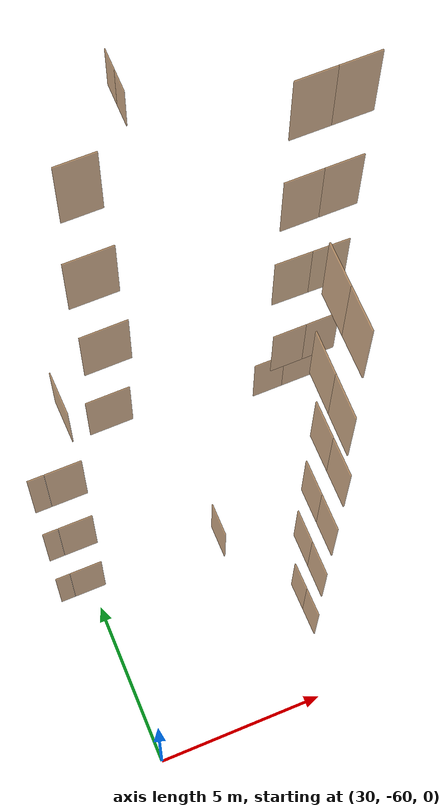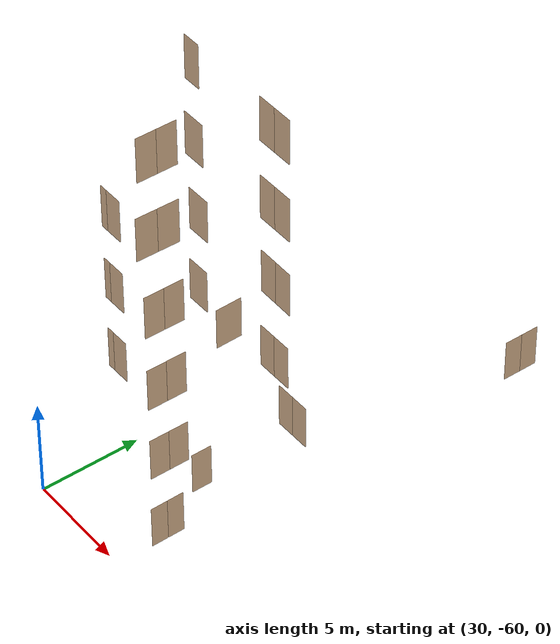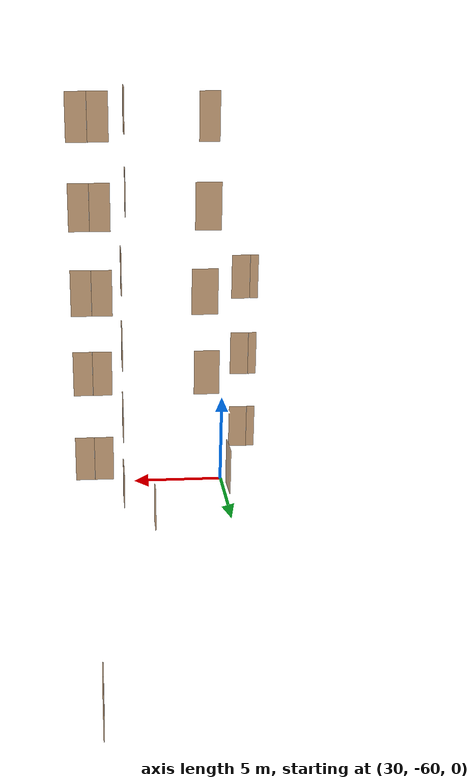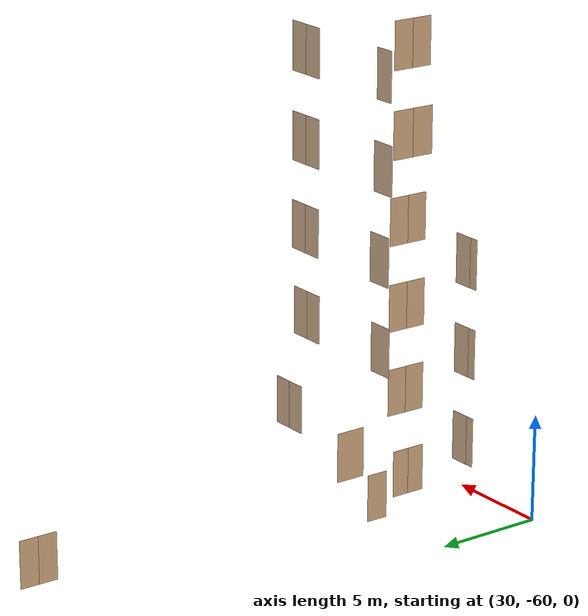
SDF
<sdf version="1.7">
 <world name="sim_world">
  <model name="Snull6">
   <pose>36.91817570847177 -38.673374901990044 0.0 0 0 -1.574078184232942</pose>
   <link name="right">
    <pose>0.45222959440596977 0 1.11 0 0 0</pose>
    <visual name="right_visual">
     <geometry><box><size>0.8944591888119395 0.03 2.2</size></box></geometry>
     <material>
      <ambient>0.5 0.25 0 0.6</ambient>
      <diffuse>0.5 0.25 0 0.6</diffuse>
      <pbr><metal><metalness>0.0</metalness></metal></pbr>
     </material>
    </visual>
    <collision name="right_collision">
     <geometry><box><size>0.8944591888119395 0.03 2.2</size></box></geometry>
     <surface><contact><collide_bitmask>0x02</collide_bitmask></contact></surface>
    </collision>
    <inertial>
     <mass>50.0</mass>
     <inertia><ixx>20.17041666666667</ixx><iyy>23.500238501875476</iyy><izz>3.3373218352088037</izz></inertia>
    </inertial>
   </link>
   <joint name="right_joint" type="revolute">
    <parent>world</parent>
    <child>right</child>
    <axis><xyz>0 0 -1</xyz><limit><lower>0</lower><upper>1.57</upper></limit></axis>
    <pose>0.45222959440596977 0 0 0 0 0</pose>
   </joint>
   <link name="left">
    <pose>-0.45222959440596977 0 1.11 0 0 0</pose>
    <visual name="left_visual">
     <geometry><box><size>0.8944591888119395 0.03 2.2</size></box></geometry>
     <material>
      <ambient>0.5 0.25 0 0.6</ambient>
      <diffuse>0.5 0.25 0 0.6</diffuse>
      <pbr><metal><metalness>0.0</metalness></metal></pbr>
     </material>
    </visual>
    <collision name="left_collision">
     <geometry><box><size>0.8944591888119395 0.03 2.2</size></box></geometry>
     <surface><contact><collide_bitmask>0x02</collide_bitmask></contact></surface>
    </collision>
    <inertial>
     <mass>50.0</mass>
     <inertia><ixx>20.17041666666667</ixx><iyy>23.500238501875476</iyy><izz>3.3373218352088037</izz></inertia>
    </inertial>
   </link>
   <joint name="left_joint" type="revolute">
    <parent>world</parent>
    <child>left</child>
    <axis><xyz>0 0 -1</xyz><limit><lower>-1.57</lower><upper>0</upper></limit></axis>
    <pose>-0.45222959440596977 0 0 0 0 0</pose>
   </joint>
   <plugin name="register_component" filename="libregister_component.so">
    <component name="Door">
     <v_max_door>0.5</v_max_door>
     <a_max_door>0.3</a_max_door>
     <a_nom_door>0.15</a_nom_door>
     <dx_min_door>0.01</dx_min_door>
     <f_max_door>500.0</f_max_door>
     <ros_interface>true</ros_interface>
     <door name="Snull6" type="DoubleSwingDoor" left_joint_name="left_joint" right_joint_name="right_joint"/>
    </component>
   </plugin>
  </model>
  <model name="Snull7">
   <pose>34.106597468543455 -54.42554978904526 0.0 0 0 -1.5707963267948966</pose>
   <link name="right">
    <pose>0 0 1.11 0 0 0</pose>
    <visual name="right_visual">
     <geometry><box><size>1.0218858977709695 0.03 2.2</size></box></geometry>
     <material>
      <ambient>0.5 0.25 0 0.6</ambient>
      <diffuse>0.5 0.25 0 0.6</diffuse>
      <pbr><metal><metalness>0.0</metalness></metal></pbr>
     </material>
    </visual>
    <collision name="right_collision">
     <geometry><box><size>1.0218858977709695 0.03 2.2</size></box></geometry>
     <surface><contact><collide_bitmask>0x02</collide_bitmask></contact></surface>
    </collision>
    <inertial>
     <mass>50.0</mass>
     <inertia><ixx>20.17041666666667</ixx><iyy>24.517711616929923</iyy><izz>4.354794950263251</izz></inertia>
    </inertial>
   </link>
   <joint name="right_joint" type="revolute">
    <parent>world</parent>
    <child>right</child>
    <axis><xyz>0 0 -1</xyz><limit><lower>0</lower><upper>1.57</upper></limit></axis>
    <pose>0.5159429488854848 0 0 0 0 0</pose>
   </joint>
   <plugin name="register_component" filename="libregister_component.so">
    <component name="Door">
     <v_max_door>0.5</v_max_door>
     <a_max_door>0.3</a_max_door>
     <a_nom_door>0.15</a_nom_door>
     <dx_min_door>0.01</dx_min_door>
     <f_max_door>500.0</f_max_door>
     <ros_interface>true</ros_interface>
     <door name="Snull7" type="SwingDoor" left_joint_name="empty_joint" right_joint_name="right_joint"/>
    </component>
   </plugin>
  </model>
  <model name="Snull9">
   <pose>35.663947279991014 -57.37185901504682 0.0 0 0 -1.5624884779698478</pose>
   <link name="right">
    <pose>0.42133590085702205 0 1.11 0 0 0</pose>
    <visual name="right_visual">
     <geometry><box><size>0.8326718017140441 0.03 2.2</size></box></geometry>
     <material>
      <ambient>0.5 0.25 0 0.6</ambient>
      <diffuse>0.5 0.25 0 0.6</diffuse>
      <pbr><metal><metalness>0.0</metalness></metal></pbr>
     </material>
    </visual>
    <collision name="right_collision">
     <geometry><box><size>0.8326718017140441 0.03 2.2</size></box></geometry>
     <surface><contact><collide_bitmask>0x02</collide_bitmask></contact></surface>
    </collision>
    <inertial>
     <mass>50.0</mass>
     <inertia><ixx>20.17041666666667</ixx><iyy>23.055593039040474</iyy><izz>2.892676372373802</izz></inertia>
    </inertial>
   </link>
   <joint name="right_joint" type="revolute">
    <parent>world</parent>
    <child>right</child>
    <axis><xyz>0 0 -1</xyz><limit><lower>0</lower><upper>1.57</upper></limit></axis>
    <pose>0.42133590085702205 0 0 0 0 0</pose>
   </joint>
   <link name="left">
    <pose>-0.42133590085702205 0 1.11 0 0 0</pose>
    <visual name="left_visual">
     <geometry><box><size>0.8326718017140441 0.03 2.2</size></box></geometry>
     <material>
      <ambient>0.5 0.25 0 0.6</ambient>
      <diffuse>0.5 0.25 0 0.6</diffuse>
      <pbr><metal><metalness>0.0</metalness></metal></pbr>
     </material>
    </visual>
    <collision name="left_collision">
     <geometry><box><size>0.8326718017140441 0.03 2.2</size></box></geometry>
     <surface><contact><collide_bitmask>0x02</collide_bitmask></contact></surface>
    </collision>
    <inertial>
     <mass>50.0</mass>
     <inertia><ixx>20.17041666666667</ixx><iyy>23.055593039040474</iyy><izz>2.892676372373802</izz></inertia>
    </inertial>
   </link>
   <joint name="left_joint" type="revolute">
    <parent>world</parent>
    <child>left</child>
    <axis><xyz>0 0 -1</xyz><limit><lower>-1.57</lower><upper>0</upper></limit></axis>
    <pose>-0.42133590085702205 0 0 0 0 0</pose>
   </joint>
   <plugin name="register_component" filename="libregister_component.so">
    <component name="Door">
     <v_max_door>0.5</v_max_door>
     <a_max_door>0.3</a_max_door>
     <a_nom_door>0.15</a_nom_door>
     <dx_min_door>0.01</dx_min_door>
     <f_max_door>500.0</f_max_door>
     <ros_interface>true</ros_interface>
     <door name="Snull9" type="DoubleSwingDoor" left_joint_name="left_joint" right_joint_name="right_joint"/>
    </component>
   </plugin>
  </model>
  <model name="0null9">
   <pose>35.66852107680243 -57.16532875331363 4.0 0 0 -1.5745061043989732</pose>
   <link name="right">
    <pose>0.488130155778294 0 1.11 0 0 0</pose>
    <visual name="right_visual">
     <geometry><box><size>0.966260311556588 0.03 2.2</size></box></geometry>
     <material>
      <ambient>0.5 0.25 0 0.6</ambient>
      <diffuse>0.5 0.25 0 0.6</diffuse>
      <pbr><metal><metalness>0.0</metalness></metal></pbr>
     </material>
    </visual>
    <collision name="right_collision">
     <geometry><box><size>0.966260311556588 0.03 2.2</size></box></geometry>
     <surface><contact><collide_bitmask>0x02</collide_bitmask></contact></surface>
    </collision>
    <inertial>
     <mass>50.0</mass>
     <inertia><ixx>20.17041666666667</ixx><iyy>24.056912457039317</iyy><izz>3.893995790372644</izz></inertia>
    </inertial>
   </link>
   <joint name="right_joint" type="revolute">
    <parent>world</parent>
    <child>right</child>
    <axis><xyz>0 0 1</xyz><limit><lower>0</lower><upper>1.57</upper></limit></axis>
    <pose>0.488130155778294 0 0 0 0 0</pose>
   </joint>
   <link name="left">
    <pose>-0.488130155778294 0 1.11 0 0 0</pose>
    <visual name="left_visual">
     <geometry><box><size>0.966260311556588 0.03 2.2</size></box></geometry>
     <material>
      <ambient>0.5 0.25 0 0.6</ambient>
      <diffuse>0.5 0.25 0 0.6</diffuse>
      <pbr><metal><metalness>0.0</metalness></metal></pbr>
     </material>
    </visual>
    <collision name="left_collision">
     <geometry><box><size>0.966260311556588 0.03 2.2</size></box></geometry>
     <surface><contact><collide_bitmask>0x02</collide_bitmask></contact></surface>
    </collision>
    <inertial>
     <mass>50.0</mass>
     <inertia><ixx>20.17041666666667</ixx><iyy>24.056912457039317</iyy><izz>3.893995790372644</izz></inertia>
    </inertial>
   </link>
   <joint name="left_joint" type="revolute">
    <parent>world</parent>
    <child>left</child>
    <axis><xyz>0 0 1</xyz><limit><lower>-1.57</lower><upper>0</upper></limit></axis>
    <pose>-0.488130155778294 0 0 0 0 0</pose>
   </joint>
   <plugin name="register_component" filename="libregister_component.so">
    <component name="Door">
     <v_max_door>0.5</v_max_door>
     <a_max_door>0.3</a_max_door>
     <a_nom_door>0.15</a_nom_door>
     <dx_min_door>0.01</dx_min_door>
     <f_max_door>500.0</f_max_door>
     <ros_interface>true</ros_interface>
     <door name="0null9" type="DoubleSwingDoor" left_joint_name="left_joint" right_joint_name="right_joint"/>
    </component>
   </plugin>
  </model>
  <model name="0null42">
   <pose>30.847141843706808 -50.4685248105141 4.0 0 0 1.5911566741003251</pose>
   <link name="right">
    <pose>0 0 1.11 0 0 0</pose>
    <visual name="right_visual">
     <geometry><box><size>1.3617886358121807 0.03 2.2</size></box></geometry>
     <material>
      <ambient>0.5 0.25 0 0.6</ambient>
      <diffuse>0.5 0.25 0 0.6</diffuse>
      <pbr><metal><metalness>0.0</metalness></metal></pbr>
     </material>
    </visual>
    <collision name="right_collision">
     <geometry><box><size>1.3617886358121807 0.03 2.2</size></box></geometry>
     <surface><contact><collide_bitmask>0x02</collide_bitmask></contact></surface>
    </collision>
    <inertial>
     <mass>50.0</mass>
     <inertia><ixx>20.17041666666667</ixx><iyy>27.893617869280007</iyy><izz>7.730701202613334</izz></inertia>
    </inertial>
   </link>
   <joint name="right_joint" type="revolute">
    <parent>world</parent>
    <child>right</child>
    <axis><xyz>0 0 1</xyz><limit><lower>0</lower><upper>1.57</upper></limit></axis>
    <pose>0.6858943179060903 0 0 0 0 0</pose>
   </joint>
   <plugin name="register_component" filename="libregister_component.so">
    <component name="Door">
     <v_max_door>0.5</v_max_door>
     <a_max_door>0.3</a_max_door>
     <a_nom_door>0.15</a_nom_door>
     <dx_min_door>0.01</dx_min_door>
     <f_max_door>500.0</f_max_door>
     <ros_interface>true</ros_interface>
     <door name="0null42" type="SwingDoor" left_joint_name="empty_joint" right_joint_name="right_joint"/>
    </component>
   </plugin>
  </model>
  <model name="0null43">
   <pose>29.536833065750642 -55.49008699548217 4.0 0 0 0.0</pose>
   <link name="right">
    <pose>0.20702264496135603 0 1.11 0 0 0</pose>
    <visual name="right_visual">
     <geometry><box><size>0.9008996378299665 0.03 2.2</size></box></geometry>
     <material>
      <ambient>0.5 0.25 0 0.6</ambient>
      <diffuse>0.5 0.25 0 0.6</diffuse>
      <pbr><metal><metalness>0.0</metalness></metal></pbr>
     </material>
    </visual>
    <collision name="right_collision">
     <geometry><box><size>0.9008996378299665 0.03 2.2</size></box></geometry>
     <surface><contact><collide_bitmask>0x02</collide_bitmask></contact></surface>
    </collision>
    <inertial>
     <mass>50.0</mass>
     <inertia><ixx>20.17041666666667</ixx><iyy>23.54841732267569</iyy><izz>3.3855006560090204</izz></inertia>
    </inertial>
   </link>
   <joint name="right_joint" type="revolute">
    <parent>world</parent>
    <child>right</child>
    <axis><xyz>0 0 -1</xyz><limit><lower>0</lower><upper>1.57</upper></limit></axis>
    <pose>0.45544981891498326 0 0 0 0 0</pose>
   </joint>
   <link name="left">
    <pose>-0.45544981891498326 0 1.11 0 0 0</pose>
    <visual name="left_visual">
     <geometry><box><size>0.40404528992271205 0.03 2.2</size></box></geometry>
     <material>
      <ambient>0.5 0.25 0 0.6</ambient>
      <diffuse>0.5 0.25 0 0.6</diffuse>
      <pbr><metal><metalness>0.0</metalness></metal></pbr>
     </material>
    </visual>
    <collision name="left_collision">
     <geometry><box><size>0.40404528992271205 0.03 2.2</size></box></geometry>
     <surface><contact><collide_bitmask>0x02</collide_bitmask></contact></surface>
    </collision>
    <inertial>
     <mass>50.0</mass>
     <inertia><ixx>20.17041666666667</ixx><iyy>20.84688581795304</iyy><izz>0.6839691512863686</izz></inertia>
    </inertial>
   </link>
   <joint name="left_joint" type="revolute">
    <parent>world</parent>
    <child>left</child>
    <axis><xyz>0 0 -1</xyz><limit><lower>-1.57</lower><upper>0</upper></limit></axis>
    <pose>-0.20702264496135603 0 0 0 0 0</pose>
   </joint>
   <plugin name="register_component" filename="libregister_component.so">
    <component name="Door">
     <v_max_door>0.5</v_max_door>
     <a_max_door>0.3</a_max_door>
     <a_nom_door>0.15</a_nom_door>
     <dx_min_door>0.01</dx_min_door>
     <f_max_door>500.0</f_max_door>
     <ros_interface>true</ros_interface>
     <door name="0null43" type="DoubleSwingDoor" left_joint_name="left_joint" right_joint_name="right_joint"/>
    </component>
   </plugin>
  </model>
  <model name="0null176">
   <pose>37.17137736623975 -51.82124855318669 4.0 0 0 -3.140550604193771</pose>
   <link name="right">
    <pose>0.4568385409799299 0 1.11 0 0 0</pose>
    <visual name="right_visual">
     <geometry><box><size>0.9036770819598597 0.03 2.2</size></box></geometry>
     <material>
      <ambient>0.5 0.25 0 0.6</ambient>
      <diffuse>0.5 0.25 0 0.6</diffuse>
      <pbr><metal><metalness>0.0</metalness></metal></pbr>
     </material>
    </visual>
    <collision name="right_collision">
     <geometry><box><size>0.9036770819598597 0.03 2.2</size></box></geometry>
     <surface><contact><collide_bitmask>0x02</collide_bitmask></contact></surface>
    </collision>
    <inertial>
     <mass>50.0</mass>
     <inertia><ixx>20.17041666666667</ixx><iyy>23.5693011185812</iyy><izz>3.40638445191453</izz></inertia>
    </inertial>
   </link>
   <joint name="right_joint" type="revolute">
    <parent>world</parent>
    <child>right</child>
    <axis><xyz>0 0 -1</xyz><limit><lower>0</lower><upper>1.57</upper></limit></axis>
    <pose>0.4568385409799299 0 0 0 0 0</pose>
   </joint>
   <link name="left">
    <pose>-0.4568385409799299 0 1.11 0 0 0</pose>
    <visual name="left_visual">
     <geometry><box><size>0.9036770819598597 0.03 2.2</size></box></geometry>
     <material>
      <ambient>0.5 0.25 0 0.6</ambient>
      <diffuse>0.5 0.25 0 0.6</diffuse>
      <pbr><metal><metalness>0.0</metalness></metal></pbr>
     </material>
    </visual>
    <collision name="left_collision">
     <geometry><box><size>0.9036770819598597 0.03 2.2</size></box></geometry>
     <surface><contact><collide_bitmask>0x02</collide_bitmask></contact></surface>
    </collision>
    <inertial>
     <mass>50.0</mass>
     <inertia><ixx>20.17041666666667</ixx><iyy>23.5693011185812</iyy><izz>3.40638445191453</izz></inertia>
    </inertial>
   </link>
   <joint name="left_joint" type="revolute">
    <parent>world</parent>
    <child>left</child>
    <axis><xyz>0 0 -1</xyz><limit><lower>-1.57</lower><upper>0</upper></limit></axis>
    <pose>-0.4568385409799299 0 0 0 0 0</pose>
   </joint>
   <plugin name="register_component" filename="libregister_component.so">
    <component name="Door">
     <v_max_door>0.5</v_max_door>
     <a_max_door>0.3</a_max_door>
     <a_nom_door>0.15</a_nom_door>
     <dx_min_door>0.01</dx_min_door>
     <f_max_door>500.0</f_max_door>
     <ros_interface>true</ros_interface>
     <door name="0null176" type="DoubleSwingDoor" left_joint_name="left_joint" right_joint_name="right_joint"/>
    </component>
   </plugin>
  </model>
  <model name="1null9">
   <pose>35.66852107680243 -57.16532875331363 8.0 0 0 -1.5745061043989732</pose>
   <link name="right">
    <pose>0.488130155778294 0 1.11 0 0 0</pose>
    <visual name="right_visual">
     <geometry><box><size>0.966260311556588 0.03 2.2</size></box></geometry>
     <material>
      <ambient>0.5 0.25 0 0.6</ambient>
      <diffuse>0.5 0.25 0 0.6</diffuse>
      <pbr><metal><metalness>0.0</metalness></metal></pbr>
     </material>
    </visual>
    <collision name="right_collision">
     <geometry><box><size>0.966260311556588 0.03 2.2</size></box></geometry>
     <surface><contact><collide_bitmask>0x02</collide_bitmask></contact></surface>
    </collision>
    <inertial>
     <mass>50.0</mass>
     <inertia><ixx>20.17041666666667</ixx><iyy>24.056912457039317</iyy><izz>3.893995790372644</izz></inertia>
    </inertial>
   </link>
   <joint name="right_joint" type="revolute">
    <parent>world</parent>
    <child>right</child>
    <axis><xyz>0 0 -1</xyz><limit><lower>0</lower><upper>1.57</upper></limit></axis>
    <pose>0.488130155778294 0 0 0 0 0</pose>
   </joint>
   <link name="left">
    <pose>-0.488130155778294 0 1.11 0 0 0</pose>
    <visual name="left_visual">
     <geometry><box><size>0.966260311556588 0.03 2.2</size></box></geometry>
     <material>
      <ambient>0.5 0.25 0 0.6</ambient>
      <diffuse>0.5 0.25 0 0.6</diffuse>
      <pbr><metal><metalness>0.0</metalness></metal></pbr>
     </material>
    </visual>
    <collision name="left_collision">
     <geometry><box><size>0.966260311556588 0.03 2.2</size></box></geometry>
     <surface><contact><collide_bitmask>0x02</collide_bitmask></contact></surface>
    </collision>
    <inertial>
     <mass>50.0</mass>
     <inertia><ixx>20.17041666666667</ixx><iyy>24.056912457039317</iyy><izz>3.893995790372644</izz></inertia>
    </inertial>
   </link>
   <joint name="left_joint" type="revolute">
    <parent>world</parent>
    <child>left</child>
    <axis><xyz>0 0 -1</xyz><limit><lower>-1.57</lower><upper>0</upper></limit></axis>
    <pose>-0.488130155778294 0 0 0 0 0</pose>
   </joint>
   <plugin name="register_component" filename="libregister_component.so">
    <component name="Door">
     <v_max_door>0.5</v_max_door>
     <a_max_door>0.3</a_max_door>
     <a_nom_door>0.15</a_nom_door>
     <dx_min_door>0.01</dx_min_door>
     <f_max_door>500.0</f_max_door>
     <ros_interface>true</ros_interface>
     <door name="1null9" type="DoubleSwingDoor" left_joint_name="left_joint" right_joint_name="right_joint"/>
    </component>
   </plugin>
  </model>
  <model name="1null43">
   <pose>29.536833065750642 -55.49008699548217 8.0 0 0 0.0</pose>
   <link name="right">
    <pose>0.20702264496135603 0 1.11 0 0 0</pose>
    <visual name="right_visual">
     <geometry><box><size>0.9008996378299665 0.03 2.2</size></box></geometry>
     <material>
      <ambient>0.5 0.25 0 0.6</ambient>
      <diffuse>0.5 0.25 0 0.6</diffuse>
      <pbr><metal><metalness>0.0</metalness></metal></pbr>
     </material>
    </visual>
    <collision name="right_collision">
     <geometry><box><size>0.9008996378299665 0.03 2.2</size></box></geometry>
     <surface><contact><collide_bitmask>0x02</collide_bitmask></contact></surface>
    </collision>
    <inertial>
     <mass>50.0</mass>
     <inertia><ixx>20.17041666666667</ixx><iyy>23.54841732267569</iyy><izz>3.3855006560090204</izz></inertia>
    </inertial>
   </link>
   <joint name="right_joint" type="revolute">
    <parent>world</parent>
    <child>right</child>
    <axis><xyz>0 0 -1</xyz><limit><lower>0</lower><upper>1.57</upper></limit></axis>
    <pose>0.45544981891498326 0 0 0 0 0</pose>
   </joint>
   <link name="left">
    <pose>-0.45544981891498326 0 1.11 0 0 0</pose>
    <visual name="left_visual">
     <geometry><box><size>0.40404528992271205 0.03 2.2</size></box></geometry>
     <material>
      <ambient>0.5 0.25 0 0.6</ambient>
      <diffuse>0.5 0.25 0 0.6</diffuse>
      <pbr><metal><metalness>0.0</metalness></metal></pbr>
     </material>
    </visual>
    <collision name="left_collision">
     <geometry><box><size>0.40404528992271205 0.03 2.2</size></box></geometry>
     <surface><contact><collide_bitmask>0x02</collide_bitmask></contact></surface>
    </collision>
    <inertial>
     <mass>50.0</mass>
     <inertia><ixx>20.17041666666667</ixx><iyy>20.84688581795304</iyy><izz>0.6839691512863686</izz></inertia>
    </inertial>
   </link>
   <joint name="left_joint" type="revolute">
    <parent>world</parent>
    <child>left</child>
    <axis><xyz>0 0 -1</xyz><limit><lower>-1.57</lower><upper>0</upper></limit></axis>
    <pose>-0.20702264496135603 0 0 0 0 0</pose>
   </joint>
   <plugin name="register_component" filename="libregister_component.so">
    <component name="Door">
     <v_max_door>0.5</v_max_door>
     <a_max_door>0.3</a_max_door>
     <a_nom_door>0.15</a_nom_door>
     <dx_min_door>0.01</dx_min_door>
     <f_max_door>500.0</f_max_door>
     <ros_interface>true</ros_interface>
     <door name="1null43" type="DoubleSwingDoor" left_joint_name="left_joint" right_joint_name="right_joint"/>
    </component>
   </plugin>
  </model>
  <model name="1null75">
   <pose>37.17811671582719 -52.769331292237574 8.0 0 0 3.141592653589793</pose>
   <link name="right">
    <pose>0.4646137475264158 0 1.11 0 0 0</pose>
    <visual name="right_visual">
     <geometry><box><size>0.9192274950528316 0.03 2.2</size></box></geometry>
     <material>
      <ambient>0.5 0.25 0 0.6</ambient>
      <diffuse>0.5 0.25 0 0.6</diffuse>
      <pbr><metal><metalness>0.0</metalness></metal></pbr>
     </material>
    </visual>
    <collision name="right_collision">
     <geometry><box><size>0.9192274950528316 0.03 2.2</size></box></geometry>
     <surface><contact><collide_bitmask>0x02</collide_bitmask></contact></surface>
    </collision>
    <inertial>
     <mass>50.0</mass>
     <inertia><ixx>20.17041666666667</ixx><iyy>23.68741328192127</iyy><izz>3.5244966152545985</izz></inertia>
    </inertial>
   </link>
   <joint name="right_joint" type="revolute">
    <parent>world</parent>
    <child>right</child>
    <axis><xyz>0 0 -1</xyz><limit><lower>0</lower><upper>1.57</upper></limit></axis>
    <pose>0.4646137475264158 0 0 0 0 0</pose>
   </joint>
   <link name="left">
    <pose>-0.4646137475264158 0 1.11 0 0 0</pose>
    <visual name="left_visual">
     <geometry><box><size>0.9192274950528316 0.03 2.2</size></box></geometry>
     <material>
      <ambient>0.5 0.25 0 0.6</ambient>
      <diffuse>0.5 0.25 0 0.6</diffuse>
      <pbr><metal><metalness>0.0</metalness></metal></pbr>
     </material>
    </visual>
    <collision name="left_collision">
     <geometry><box><size>0.9192274950528316 0.03 2.2</size></box></geometry>
     <surface><contact><collide_bitmask>0x02</collide_bitmask></contact></surface>
    </collision>
    <inertial>
     <mass>50.0</mass>
     <inertia><ixx>20.17041666666667</ixx><iyy>23.68741328192127</iyy><izz>3.5244966152545985</izz></inertia>
    </inertial>
   </link>
   <joint name="left_joint" type="revolute">
    <parent>world</parent>
    <child>left</child>
    <axis><xyz>0 0 -1</xyz><limit><lower>-1.57</lower><upper>0</upper></limit></axis>
    <pose>-0.4646137475264158 0 0 0 0 0</pose>
   </joint>
   <plugin name="register_component" filename="libregister_component.so">
    <component name="Door">
     <v_max_door>0.5</v_max_door>
     <a_max_door>0.3</a_max_door>
     <a_nom_door>0.15</a_nom_door>
     <dx_min_door>0.01</dx_min_door>
     <f_max_door>500.0</f_max_door>
     <ros_interface>true</ros_interface>
     <door name="1null75" type="DoubleSwingDoor" left_joint_name="left_joint" right_joint_name="right_joint"/>
    </component>
   </plugin>
  </model>
  <model name="nullnuevo">
   <pose>31.70302057275135 -52.64021954224691 8.0 0 0 -3.136844409004198</pose>
   <link name="right">
    <pose>0 0 1.11 0 0 0</pose>
    <visual name="right_visual">
     <geometry><box><size>1.2166874645772883 0.03 2.2</size></box></geometry>
     <material>
      <ambient>0.5 0.25 0 0.6</ambient>
      <diffuse>0.5 0.25 0 0.6</diffuse>
      <pbr><metal><metalness>0.0</metalness></metal></pbr>
     </material>
    </visual>
    <collision name="right_collision">
     <geometry><box><size>1.2166874645772883 0.03 2.2</size></box></geometry>
     <surface><contact><collide_bitmask>0x02</collide_bitmask></contact></surface>
    </collision>
    <inertial>
     <mass>50.0</mass>
     <inertia><ixx>20.17041666666667</ixx><iyy>26.33470161024796</iyy><izz>6.171784943581292</izz></inertia>
    </inertial>
   </link>
   <joint name="right_joint" type="revolute">
    <parent>world</parent>
    <child>right</child>
    <axis><xyz>0 0 -1</xyz><limit><lower>0</lower><upper>1.57</upper></limit></axis>
    <pose>0.6133437322886441 0 0 0 0 0</pose>
   </joint>
   <plugin name="register_component" filename="libregister_component.so">
    <component name="Door">
     <v_max_door>0.5</v_max_door>
     <a_max_door>0.3</a_max_door>
     <a_nom_door>0.15</a_nom_door>
     <dx_min_door>0.01</dx_min_door>
     <f_max_door>500.0</f_max_door>
     <ros_interface>true</ros_interface>
     <door name="nullnuevo" type="SwingDoor" left_joint_name="empty_joint" right_joint_name="right_joint"/>
    </component>
   </plugin>
  </model>
  <model name="2null9">
   <pose>35.66852107680243 -57.16532875331363 12.0 0 0 -1.5745061043989732</pose>
   <link name="right">
    <pose>0.488130155778294 0 1.11 0 0 0</pose>
    <visual name="right_visual">
     <geometry><box><size>0.966260311556588 0.03 2.2</size></box></geometry>
     <material>
      <ambient>0.5 0.25 0 0.6</ambient>
      <diffuse>0.5 0.25 0 0.6</diffuse>
      <pbr><metal><metalness>0.0</metalness></metal></pbr>
     </material>
    </visual>
    <collision name="right_collision">
     <geometry><box><size>0.966260311556588 0.03 2.2</size></box></geometry>
     <surface><contact><collide_bitmask>0x02</collide_bitmask></contact></surface>
    </collision>
    <inertial>
     <mass>50.0</mass>
     <inertia><ixx>20.17041666666667</ixx><iyy>24.056912457039317</iyy><izz>3.893995790372644</izz></inertia>
    </inertial>
   </link>
   <joint name="right_joint" type="revolute">
    <parent>world</parent>
    <child>right</child>
    <axis><xyz>0 0 -1</xyz><limit><lower>0</lower><upper>1.57</upper></limit></axis>
    <pose>0.488130155778294 0 0 0 0 0</pose>
   </joint>
   <link name="left">
    <pose>-0.488130155778294 0 1.11 0 0 0</pose>
    <visual name="left_visual">
     <geometry><box><size>0.966260311556588 0.03 2.2</size></box></geometry>
     <material>
      <ambient>0.5 0.25 0 0.6</ambient>
      <diffuse>0.5 0.25 0 0.6</diffuse>
      <pbr><metal><metalness>0.0</metalness></metal></pbr>
     </material>
    </visual>
    <collision name="left_collision">
     <geometry><box><size>0.966260311556588 0.03 2.2</size></box></geometry>
     <surface><contact><collide_bitmask>0x02</collide_bitmask></contact></surface>
    </collision>
    <inertial>
     <mass>50.0</mass>
     <inertia><ixx>20.17041666666667</ixx><iyy>24.056912457039317</iyy><izz>3.893995790372644</izz></inertia>
    </inertial>
   </link>
   <joint name="left_joint" type="revolute">
    <parent>world</parent>
    <child>left</child>
    <axis><xyz>0 0 -1</xyz><limit><lower>-1.57</lower><upper>0</upper></limit></axis>
    <pose>-0.488130155778294 0 0 0 0 0</pose>
   </joint>
   <plugin name="register_component" filename="libregister_component.so">
    <component name="Door">
     <v_max_door>0.5</v_max_door>
     <a_max_door>0.3</a_max_door>
     <a_nom_door>0.15</a_nom_door>
     <dx_min_door>0.01</dx_min_door>
     <f_max_door>500.0</f_max_door>
     <ros_interface>true</ros_interface>
     <door name="2null9" type="DoubleSwingDoor" left_joint_name="left_joint" right_joint_name="right_joint"/>
    </component>
   </plugin>
  </model>
  <model name="2null43">
   <pose>29.536833065750642 -55.49008699548217 12.0 0 0 0.0</pose>
   <link name="right">
    <pose>0.20702264496135603 0 1.11 0 0 0</pose>
    <visual name="right_visual">
     <geometry><box><size>0.9008996378299665 0.03 2.2</size></box></geometry>
     <material>
      <ambient>0.5 0.25 0 0.6</ambient>
      <diffuse>0.5 0.25 0 0.6</diffuse>
      <pbr><metal><metalness>0.0</metalness></metal></pbr>
     </material>
    </visual>
    <collision name="right_collision">
     <geometry><box><size>0.9008996378299665 0.03 2.2</size></box></geometry>
     <surface><contact><collide_bitmask>0x02</collide_bitmask></contact></surface>
    </collision>
    <inertial>
     <mass>50.0</mass>
     <inertia><ixx>20.17041666666667</ixx><iyy>23.54841732267569</iyy><izz>3.3855006560090204</izz></inertia>
    </inertial>
   </link>
   <joint name="right_joint" type="revolute">
    <parent>world</parent>
    <child>right</child>
    <axis><xyz>0 0 -1</xyz><limit><lower>0</lower><upper>1.57</upper></limit></axis>
    <pose>0.45544981891498326 0 0 0 0 0</pose>
   </joint>
   <link name="left">
    <pose>-0.45544981891498326 0 1.11 0 0 0</pose>
    <visual name="left_visual">
     <geometry><box><size>0.40404528992271205 0.03 2.2</size></box></geometry>
     <material>
      <ambient>0.5 0.25 0 0.6</ambient>
      <diffuse>0.5 0.25 0 0.6</diffuse>
      <pbr><metal><metalness>0.0</metalness></metal></pbr>
     </material>
    </visual>
    <collision name="left_collision">
     <geometry><box><size>0.40404528992271205 0.03 2.2</size></box></geometry>
     <surface><contact><collide_bitmask>0x02</collide_bitmask></contact></surface>
    </collision>
    <inertial>
     <mass>50.0</mass>
     <inertia><ixx>20.17041666666667</ixx><iyy>20.84688581795304</iyy><izz>0.6839691512863686</izz></inertia>
    </inertial>
   </link>
   <joint name="left_joint" type="revolute">
    <parent>world</parent>
    <child>left</child>
    <axis><xyz>0 0 -1</xyz><limit><lower>-1.57</lower><upper>0</upper></limit></axis>
    <pose>-0.20702264496135603 0 0 0 0 0</pose>
   </joint>
   <plugin name="register_component" filename="libregister_component.so">
    <component name="Door">
     <v_max_door>0.5</v_max_door>
     <a_max_door>0.3</a_max_door>
     <a_nom_door>0.15</a_nom_door>
     <dx_min_door>0.01</dx_min_door>
     <f_max_door>500.0</f_max_door>
     <ros_interface>true</ros_interface>
     <door name="2null43" type="DoubleSwingDoor" left_joint_name="left_joint" right_joint_name="right_joint"/>
    </component>
   </plugin>
  </model>
  <model name="2null75">
   <pose>37.14830302804015 -52.6605869394765 12.0 0 0 3.1254990462404093</pose>
   <link name="right">
    <pose>0.4866403260837476 0 1.11 0 0 0</pose>
    <visual name="right_visual">
     <geometry><box><size>0.9632806521674951 0.03 2.2</size></box></geometry>
     <material>
      <ambient>0.5 0.25 0 0.6</ambient>
      <diffuse>0.5 0.25 0 0.6</diffuse>
      <pbr><metal><metalness>0.0</metalness></metal></pbr>
     </material>
    </visual>
    <collision name="right_collision">
     <geometry><box><size>0.9632806521674951 0.03 2.2</size></box></geometry>
     <surface><contact><collide_bitmask>0x02</collide_bitmask></contact></surface>
    </collision>
    <inertial>
     <mass>50.0</mass>
     <inertia><ixx>20.17041666666667</ixx><iyy>24.03295672850098</iyy><izz>3.8700400618343123</izz></inertia>
    </inertial>
   </link>
   <joint name="right_joint" type="revolute">
    <parent>world</parent>
    <child>right</child>
    <axis><xyz>0 0 -1</xyz><limit><lower>0</lower><upper>1.57</upper></limit></axis>
    <pose>0.4866403260837476 0 0 0 0 0</pose>
   </joint>
   <link name="left">
    <pose>-0.4866403260837476 0 1.11 0 0 0</pose>
    <visual name="left_visual">
     <geometry><box><size>0.9632806521674951 0.03 2.2</size></box></geometry>
     <material>
      <ambient>0.5 0.25 0 0.6</ambient>
      <diffuse>0.5 0.25 0 0.6</diffuse>
      <pbr><metal><metalness>0.0</metalness></metal></pbr>
     </material>
    </visual>
    <collision name="left_collision">
     <geometry><box><size>0.9632806521674951 0.03 2.2</size></box></geometry>
     <surface><contact><collide_bitmask>0x02</collide_bitmask></contact></surface>
    </collision>
    <inertial>
     <mass>50.0</mass>
     <inertia><ixx>20.17041666666667</ixx><iyy>24.03295672850098</iyy><izz>3.8700400618343123</izz></inertia>
    </inertial>
   </link>
   <joint name="left_joint" type="revolute">
    <parent>world</parent>
    <child>left</child>
    <axis><xyz>0 0 -1</xyz><limit><lower>-1.57</lower><upper>0</upper></limit></axis>
    <pose>-0.4866403260837476 0 0 0 0 0</pose>
   </joint>
   <plugin name="register_component" filename="libregister_component.so">
    <component name="Door">
     <v_max_door>0.5</v_max_door>
     <a_max_door>0.3</a_max_door>
     <a_nom_door>0.15</a_nom_door>
     <dx_min_door>0.01</dx_min_door>
     <f_max_door>500.0</f_max_door>
     <ros_interface>true</ros_interface>
     <door name="2null75" type="DoubleSwingDoor" left_joint_name="left_joint" right_joint_name="right_joint"/>
    </component>
   </plugin>
  </model>
  <model name="nulln4">
   <pose>31.827110480528674 -52.64329985438521 12.0 0 0 -3.1351376758672784</pose>
   <link name="right">
    <pose>0 0 1.11 0 0 0</pose>
    <visual name="right_visual">
     <geometry><box><size>1.2451880061051668 0.03 2.2</size></box></geometry>
     <material>
      <ambient>0.5 0.25 0 0.6</ambient>
      <diffuse>0.5 0.25 0 0.6</diffuse>
      <pbr><metal><metalness>0.0</metalness></metal></pbr>
     </material>
    </visual>
    <collision name="right_collision">
     <geometry><box><size>1.2451880061051668 0.03 2.2</size></box></geometry>
     <surface><contact><collide_bitmask>0x02</collide_bitmask></contact></surface>
    </collision>
    <inertial>
     <mass>50.0</mass>
     <inertia><ixx>20.17041666666667</ixx><iyy>26.62705487728401</iyy><izz>6.464138210617337</izz></inertia>
    </inertial>
   </link>
   <joint name="right_joint" type="revolute">
    <parent>world</parent>
    <child>right</child>
    <axis><xyz>0 0 -1</xyz><limit><lower>0</lower><upper>1.57</upper></limit></axis>
    <pose>0.6275940030525834 0 0 0 0 0</pose>
   </joint>
   <plugin name="register_component" filename="libregister_component.so">
    <component name="Door">
     <v_max_door>0.5</v_max_door>
     <a_max_door>0.3</a_max_door>
     <a_nom_door>0.15</a_nom_door>
     <dx_min_door>0.01</dx_min_door>
     <f_max_door>500.0</f_max_door>
     <ros_interface>true</ros_interface>
     <door name="nulln4" type="SwingDoor" left_joint_name="empty_joint" right_joint_name="right_joint"/>
    </component>
   </plugin>
  </model>
  <model name="wnullm25">
   <pose>31.700219055622654 -52.68723437943095 16.0 0 0 3.141550704106866</pose>
   <link name="right">
    <pose>0 0 1.11 0 0 0</pose>
    <visual name="right_visual">
     <geometry><box><size>1.211194994809967 0.03 2.2</size></box></geometry>
     <material>
      <ambient>0.5 0.25 0 0.6</ambient>
      <diffuse>0.5 0.25 0 0.6</diffuse>
      <pbr><metal><metalness>0.0</metalness></metal></pbr>
     </material>
    </visual>
    <collision name="right_collision">
     <geometry><box><size>1.211194994809967 0.03 2.2</size></box></geometry>
     <surface><contact><collide_bitmask>0x02</collide_bitmask></contact></surface>
    </collision>
    <inertial>
     <mass>50.0</mass>
     <inertia><ixx>20.17041666666667</ixx><iyy>26.27913881438632</iyy><izz>6.1162221477196494</izz></inertia>
    </inertial>
   </link>
   <joint name="right_joint" type="revolute">
    <parent>world</parent>
    <child>right</child>
    <axis><xyz>0 0 -1</xyz><limit><lower>0</lower><upper>1.57</upper></limit></axis>
    <pose>0.6105974974049835 0 0 0 0 0</pose>
   </joint>
   <plugin name="register_component" filename="libregister_component.so">
    <component name="Door">
     <v_max_door>0.5</v_max_door>
     <a_max_door>0.3</a_max_door>
     <a_nom_door>0.15</a_nom_door>
     <dx_min_door>0.01</dx_min_door>
     <f_max_door>500.0</f_max_door>
     <ros_interface>true</ros_interface>
     <door name="wnullm25" type="SwingDoor" left_joint_name="empty_joint" right_joint_name="right_joint"/>
    </component>
   </plugin>
  </model>
  <model name="wnullm26">
   <pose>37.15955534229158 -52.68866964063551 16.0 0 0 3.1415507041068658</pose>
   <link name="right">
    <pose>0.4807799624872168 0 1.11 0 0 0</pose>
    <visual name="right_visual">
     <geometry><box><size>0.9515599249744336 0.03 2.2</size></box></geometry>
     <material>
      <ambient>0.5 0.25 0 0.6</ambient>
      <diffuse>0.5 0.25 0 0.6</diffuse>
      <pbr><metal><metalness>0.0</metalness></metal></pbr>
     </material>
    </visual>
    <collision name="right_collision">
     <geometry><box><size>0.9515599249744336 0.03 2.2</size></box></geometry>
     <surface><contact><collide_bitmask>0x02</collide_bitmask></contact></surface>
    </collision>
    <inertial>
     <mass>50.0</mass>
     <inertia><ixx>20.17041666666667</ixx><iyy>23.93944287840563</iyy><izz>3.7765262117389575</izz></inertia>
    </inertial>
   </link>
   <joint name="right_joint" type="revolute">
    <parent>world</parent>
    <child>right</child>
    <axis><xyz>0 0 -1</xyz><limit><lower>0</lower><upper>1.57</upper></limit></axis>
    <pose>0.4807799624872168 0 0 0 0 0</pose>
   </joint>
   <link name="left">
    <pose>-0.4807799624872168 0 1.11 0 0 0</pose>
    <visual name="left_visual">
     <geometry><box><size>0.9515599249744336 0.03 2.2</size></box></geometry>
     <material>
      <ambient>0.5 0.25 0 0.6</ambient>
      <diffuse>0.5 0.25 0 0.6</diffuse>
      <pbr><metal><metalness>0.0</metalness></metal></pbr>
     </material>
    </visual>
    <collision name="left_collision">
     <geometry><box><size>0.9515599249744336 0.03 2.2</size></box></geometry>
     <surface><contact><collide_bitmask>0x02</collide_bitmask></contact></surface>
    </collision>
    <inertial>
     <mass>50.0</mass>
     <inertia><ixx>20.17041666666667</ixx><iyy>23.93944287840563</iyy><izz>3.7765262117389575</izz></inertia>
    </inertial>
   </link>
   <joint name="left_joint" type="revolute">
    <parent>world</parent>
    <child>left</child>
    <axis><xyz>0 0 -1</xyz><limit><lower>-1.57</lower><upper>0</upper></limit></axis>
    <pose>-0.4807799624872168 0 0 0 0 0</pose>
   </joint>
   <plugin name="register_component" filename="libregister_component.so">
    <component name="Door">
     <v_max_door>0.5</v_max_door>
     <a_max_door>0.3</a_max_door>
     <a_nom_door>0.15</a_nom_door>
     <dx_min_door>0.01</dx_min_door>
     <f_max_door>500.0</f_max_door>
     <ros_interface>true</ros_interface>
     <door name="wnullm26" type="DoubleSwingDoor" left_joint_name="left_joint" right_joint_name="right_joint"/>
    </component>
   </plugin>
  </model>
  <model name="nulBGFl">
   <pose>35.40921581164977 -57.167456523118915 16.0 0 0 -1.587444436832717</pose>
   <link name="right">
    <pose>0.5216997315944608 0 1.11 0 0 0</pose>
    <visual name="right_visual">
     <geometry><box><size>1.0333994631889216 0.03 2.2</size></box></geometry>
     <material>
      <ambient>0.5 0.25 0 0.6</ambient>
      <diffuse>0.5 0.25 0 0.6</diffuse>
      <pbr><metal><metalness>0.0</metalness></metal></pbr>
     </material>
    </visual>
    <collision name="right_collision">
     <geometry><box><size>1.0333994631889216 0.03 2.2</size></box></geometry>
     <surface><contact><collide_bitmask>0x02</collide_bitmask></contact></surface>
    </collision>
    <inertial>
     <mass>50.0</mass>
     <inertia><ixx>20.17041666666667</ixx><iyy>24.616310210496472</iyy><izz>4.453393543829797</izz></inertia>
    </inertial>
   </link>
   <joint name="right_joint" type="revolute">
    <parent>world</parent>
    <child>right</child>
    <axis><xyz>0 0 -1</xyz><limit><lower>0</lower><upper>1.57</upper></limit></axis>
    <pose>0.5216997315944608 0 0 0 0 0</pose>
   </joint>
   <link name="left">
    <pose>-0.5216997315944608 0 1.11 0 0 0</pose>
    <visual name="left_visual">
     <geometry><box><size>1.0333994631889216 0.03 2.2</size></box></geometry>
     <material>
      <ambient>0.5 0.25 0 0.6</ambient>
      <diffuse>0.5 0.25 0 0.6</diffuse>
      <pbr><metal><metalness>0.0</metalness></metal></pbr>
     </material>
    </visual>
    <collision name="left_collision">
     <geometry><box><size>1.0333994631889216 0.03 2.2</size></box></geometry>
     <surface><contact><collide_bitmask>0x02</collide_bitmask></contact></surface>
    </collision>
    <inertial>
     <mass>50.0</mass>
     <inertia><ixx>20.17041666666667</ixx><iyy>24.616310210496472</iyy><izz>4.453393543829797</izz></inertia>
    </inertial>
   </link>
   <joint name="left_joint" type="revolute">
    <parent>world</parent>
    <child>left</child>
    <axis><xyz>0 0 -1</xyz><limit><lower>-1.57</lower><upper>0</upper></limit></axis>
    <pose>-0.5216997315944608 0 0 0 0 0</pose>
   </joint>
   <plugin name="register_component" filename="libregister_component.so">
    <component name="Door">
     <v_max_door>0.5</v_max_door>
     <a_max_door>0.3</a_max_door>
     <a_nom_door>0.15</a_nom_door>
     <dx_min_door>0.01</dx_min_door>
     <f_max_door>500.0</f_max_door>
     <ros_interface>true</ros_interface>
     <door name="nulBGFl" type="DoubleSwingDoor" left_joint_name="left_joint" right_joint_name="right_joint"/>
    </component>
   </plugin>
  </model>
  <model name="nullm25">
   <pose>31.69104198016435 -52.691147796287254 20.0 0 0 3.141362344980325</pose>
   <link name="right">
    <pose>0 0 1.11 0 0 0</pose>
    <visual name="right_visual">
     <geometry><box><size>0.931519632193978 0.03 2.2</size></box></geometry>
     <material>
      <ambient>0.5 0.25 0 0.6</ambient>
      <diffuse>0.5 0.25 0 0.6</diffuse>
      <pbr><metal><metalness>0.0</metalness></metal></pbr>
     </material>
    </visual>
    <collision name="right_collision">
     <geometry><box><size>0.931519632193978 0.03 2.2</size></box></geometry>
     <surface><contact><collide_bitmask>0x02</collide_bitmask></contact></surface>
    </collision>
    <inertial>
     <mass>50.0</mass>
     <inertia><ixx>20.17041666666667</ixx><iyy>23.782203438178357</iyy><izz>3.619286771511684</izz></inertia>
    </inertial>
   </link>
   <joint name="right_joint" type="revolute">
    <parent>world</parent>
    <child>right</child>
    <axis><xyz>0 0 -1</xyz><limit><lower>0</lower><upper>1.57</upper></limit></axis>
    <pose>0.470759816096989 0 0 0 0 0</pose>
   </joint>
   <plugin name="register_component" filename="libregister_component.so">
    <component name="Door">
     <v_max_door>0.5</v_max_door>
     <a_max_door>0.3</a_max_door>
     <a_nom_door>0.15</a_nom_door>
     <dx_min_door>0.01</dx_min_door>
     <f_max_door>500.0</f_max_door>
     <ros_interface>true</ros_interface>
     <door name="nullm25" type="SwingDoor" left_joint_name="empty_joint" right_joint_name="right_joint"/>
    </component>
   </plugin>
  </model>
  <model name="nullm26">
   <pose>37.16993457455826 -52.69240963244442 20.0 0 0 3.1413623449803243</pose>
   <link name="right">
    <pose>0.4807752046838787 0 1.11 0 0 0</pose>
    <visual name="right_visual">
     <geometry><box><size>0.9515504093677574 0.03 2.2</size></box></geometry>
     <material>
      <ambient>0.5 0.25 0 0.6</ambient>
      <diffuse>0.5 0.25 0 0.6</diffuse>
      <pbr><metal><metalness>0.0</metalness></metal></pbr>
     </material>
    </visual>
    <collision name="right_collision">
     <geometry><box><size>0.9515504093677574 0.03 2.2</size></box></geometry>
     <surface><contact><collide_bitmask>0x02</collide_bitmask></contact></surface>
    </collision>
    <inertial>
     <mass>50.0</mass>
     <inertia><ixx>20.17041666666667</ixx><iyy>23.93936742319978</iyy><izz>3.7764507565331114</izz></inertia>
    </inertial>
   </link>
   <joint name="right_joint" type="revolute">
    <parent>world</parent>
    <child>right</child>
    <axis><xyz>0 0 -1</xyz><limit><lower>0</lower><upper>1.57</upper></limit></axis>
    <pose>0.4807752046838787 0 0 0 0 0</pose>
   </joint>
   <link name="left">
    <pose>-0.4807752046838787 0 1.11 0 0 0</pose>
    <visual name="left_visual">
     <geometry><box><size>0.9515504093677574 0.03 2.2</size></box></geometry>
     <material>
      <ambient>0.5 0.25 0 0.6</ambient>
      <diffuse>0.5 0.25 0 0.6</diffuse>
      <pbr><metal><metalness>0.0</metalness></metal></pbr>
     </material>
    </visual>
    <collision name="left_collision">
     <geometry><box><size>0.9515504093677574 0.03 2.2</size></box></geometry>
     <surface><contact><collide_bitmask>0x02</collide_bitmask></contact></surface>
    </collision>
    <inertial>
     <mass>50.0</mass>
     <inertia><ixx>20.17041666666667</ixx><iyy>23.93936742319978</iyy><izz>3.7764507565331114</izz></inertia>
    </inertial>
   </link>
   <joint name="left_joint" type="revolute">
    <parent>world</parent>
    <child>left</child>
    <axis><xyz>0 0 -1</xyz><limit><lower>-1.57</lower><upper>0</upper></limit></axis>
    <pose>-0.4807752046838787 0 0 0 0 0</pose>
   </joint>
   <plugin name="register_component" filename="libregister_component.so">
    <component name="Door">
     <v_max_door>0.5</v_max_door>
     <a_max_door>0.3</a_max_door>
     <a_nom_door>0.15</a_nom_door>
     <dx_min_door>0.01</dx_min_door>
     <f_max_door>500.0</f_max_door>
     <ros_interface>true</ros_interface>
     <door name="nullm26" type="DoubleSwingDoor" left_joint_name="left_joint" right_joint_name="right_joint"/>
    </component>
   </plugin>
  </model>
  <model name="nusafll">
   <pose>35.4325833525191 -57.10137582909583 20.0 0 0 -1.5746488559650609</pose>
   <link name="right">
    <pose>0.4869009448105935 0 1.11 0 0 0</pose>
    <visual name="right_visual">
     <geometry><box><size>0.963801889621187 0.03 2.2</size></box></geometry>
     <material>
      <ambient>0.5 0.25 0 0.6</ambient>
      <diffuse>0.5 0.25 0 0.6</diffuse>
      <pbr><metal><metalness>0.0</metalness></metal></pbr>
     </material>
    </visual>
    <collision name="right_collision">
     <geometry><box><size>0.963801889621187 0.03 2.2</size></box></geometry>
     <surface><contact><collide_bitmask>0x02</collide_bitmask></contact></surface>
    </collision>
    <inertial>
     <mass>50.0</mass>
     <inertia><ixx>20.17041666666667</ixx><iyy>24.037142010155716</iyy><izz>3.8742253434890443</izz></inertia>
    </inertial>
   </link>
   <joint name="right_joint" type="revolute">
    <parent>world</parent>
    <child>right</child>
    <axis><xyz>0 0 -1</xyz><limit><lower>0</lower><upper>1.57</upper></limit></axis>
    <pose>0.4869009448105935 0 0 0 0 0</pose>
   </joint>
   <link name="left">
    <pose>-0.4869009448105935 0 1.11 0 0 0</pose>
    <visual name="left_visual">
     <geometry><box><size>0.963801889621187 0.03 2.2</size></box></geometry>
     <material>
      <ambient>0.5 0.25 0 0.6</ambient>
      <diffuse>0.5 0.25 0 0.6</diffuse>
      <pbr><metal><metalness>0.0</metalness></metal></pbr>
     </material>
    </visual>
    <collision name="left_collision">
     <geometry><box><size>0.963801889621187 0.03 2.2</size></box></geometry>
     <surface><contact><collide_bitmask>0x02</collide_bitmask></contact></surface>
    </collision>
    <inertial>
     <mass>50.0</mass>
     <inertia><ixx>20.17041666666667</ixx><iyy>24.037142010155716</iyy><izz>3.8742253434890443</izz></inertia>
    </inertial>
   </link>
   <joint name="left_joint" type="revolute">
    <parent>world</parent>
    <child>left</child>
    <axis><xyz>0 0 -1</xyz><limit><lower>-1.57</lower><upper>0</upper></limit></axis>
    <pose>-0.4869009448105935 0 0 0 0 0</pose>
   </joint>
   <plugin name="register_component" filename="libregister_component.so">
    <component name="Door">
     <v_max_door>0.5</v_max_door>
     <a_max_door>0.3</a_max_door>
     <a_nom_door>0.15</a_nom_door>
     <dx_min_door>0.01</dx_min_door>
     <f_max_door>500.0</f_max_door>
     <ros_interface>true</ros_interface>
     <door name="nusafll" type="DoubleSwingDoor" left_joint_name="left_joint" right_joint_name="right_joint"/>
    </component>
   </plugin>
  </model>
 </world>
</sdf>
